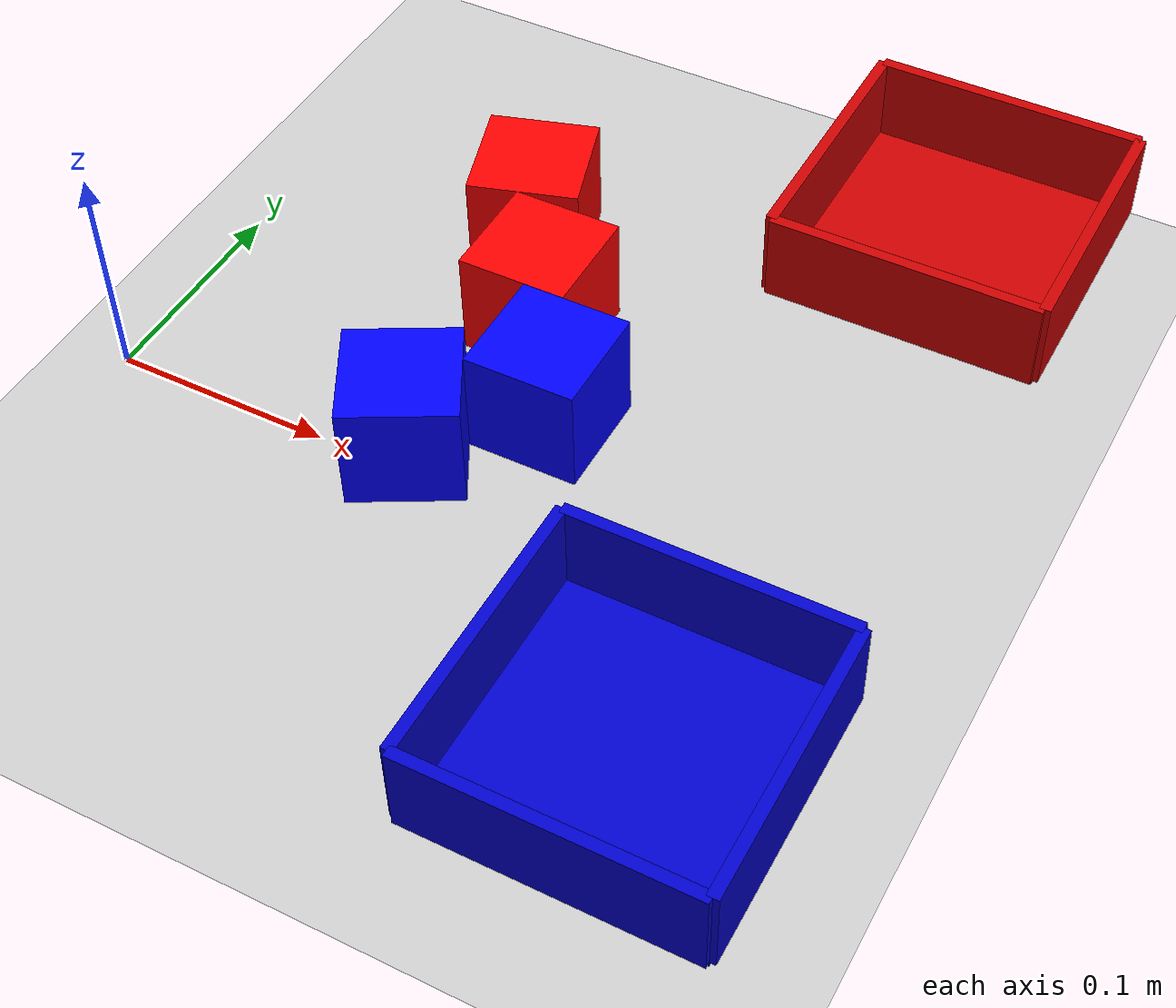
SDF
<sdf version='1.10'>
  <world name='braccio_sorting_world'>
    <plugin name='gz::sim::systems::Physics' filename='gz-sim-physics-system'>
      <engine>
        <filename>libgz-physics-bullet-featherstone-plugin.so</filename>
      </engine>
    </plugin>
    <plugin name='gz::sim::systems::UserCommands' filename='gz-sim-user-commands-system'/>
    <plugin name='gz::sim::systems::SceneBroadcaster' filename='gz-sim-scene-broadcaster-system'/>
    <plugin name='gz::sim::systems::Sensors' filename='gz-sim-sensors-system'>
      <render_engine>ogre2</render_engine>
    </plugin>
    <plugin name='gz::sim::systems::Imu' filename='gz-sim-imu-system'/>
    <gravity>0 0 -9.8000000000000007</gravity>
    <magnetic_field>5.5644999999999998e-06 2.2875799999999999e-05 -4.2388400000000002e-05</magnetic_field>
    <atmosphere type='adiabatic'/>
    <physics type='ode'>
      <max_step_size>0.001</max_step_size>
      <real_time_factor>1</real_time_factor>
      <real_time_update_rate>1000</real_time_update_rate>
    </physics>
    <scene>
      <ambient>0.400000006 0.400000006 0.400000006 1</ambient>
      <background>0.699999988 0.699999988 0.699999988 1</background>
      <shadows>true</shadows>
    </scene>
    <model name='ground_plane'>
      <static>true</static>
      <link name='link'>
        <collision name='collision'>
          <geometry>
            <plane>
              <normal>0 0 1</normal>
              <size>1 1</size>
            </plane>
          </geometry>
        </collision>
        <visual name='visual'>
          <geometry>
            <plane>
              <normal>0 0 1</normal>
              <size>100 100</size>
            </plane>
          </geometry>
          <material>
            <ambient>0.800000012 0.800000012 0.800000012 1</ambient>
            <diffuse>0.800000012 0.800000012 0.800000012 1</diffuse>
          </material>
        </visual>
        <pose>0 0 0 0 0 0</pose>
        <inertial>
          <pose>0 0 0 0 0 0</pose>
          <mass>1</mass>
          <inertia>
            <ixx>1</ixx>
            <ixy>0</ixy>
            <ixz>0</ixz>
            <iyy>1</iyy>
            <iyz>0</iyz>
            <izz>1</izz>
          </inertia>
        </inertial>
        <enable_wind>false</enable_wind>
      </link>
      <pose>0 0 0 0 0 0</pose>
      <self_collide>false</self_collide>
    </model>
    <model name='red_cube_1'>
      <pose>0.15082827210426331 0.10085789859294891 0.024999955669045448 4.6007782422695069e-07 9.2592376271935481e-07 0.0034777251785947836</pose>
      <link name='link'>
        <inertial>
          <mass>0.050000000000000003</mass>
          <inertia>
            <ixx>1.0000000000000001e-05</ixx>
            <iyy>1.0000000000000001e-05</iyy>
            <izz>1.0000000000000001e-05</izz>
            <ixy>0</ixy>
            <ixz>0</ixz>
            <iyz>0</iyz>
          </inertia>
          <pose>0 0 0 0 0 0</pose>
        </inertial>
        <collision name='collision'>
          <geometry>
            <box>
              <size>0.050000000000000003 0.050000000000000003 0.050000000000000003</size>
            </box>
          </geometry>
        </collision>
        <visual name='visual'>
          <geometry>
            <box>
              <size>0.050000000000000003 0.050000000000000003 0.050000000000000003</size>
            </box>
          </geometry>
          <material>
            <ambient>1 0 0 1</ambient>
            <diffuse>1 0 0 1</diffuse>
            <specular>0.5 0.5 0.5 1</specular>
          </material>
        </visual>
        <pose>0 0 0 0 0 0</pose>
        <enable_wind>false</enable_wind>
      </link>
      <static>false</static>
      <self_collide>false</self_collide>
    </model>
    <model name='red_cube_2'>
      <pose>0.12012927234172821 0.15020669996738434 0.024999955669045448 1.2813610753292987e-09 -4.8123102857885983e-07 0.30040729400139626</pose>
      <link name='link'>
        <inertial>
          <mass>0.050000000000000003</mass>
          <inertia>
            <ixx>1.0000000000000001e-05</ixx>
            <iyy>1.0000000000000001e-05</iyy>
            <izz>1.0000000000000001e-05</izz>
            <ixy>0</ixy>
            <ixz>0</ixz>
            <iyz>0</iyz>
          </inertia>
          <pose>0 0 0 0 0 0</pose>
        </inertial>
        <collision name='collision'>
          <geometry>
            <box>
              <size>0.050000000000000003 0.050000000000000003 0.050000000000000003</size>
            </box>
          </geometry>
        </collision>
        <visual name='visual'>
          <geometry>
            <box>
              <size>0.050000000000000003 0.050000000000000003 0.050000000000000003</size>
            </box>
          </geometry>
          <material>
            <ambient>1 0 0 1</ambient>
            <diffuse>1 0 0 1</diffuse>
            <specular>0.5 0.5 0.5 1</specular>
          </material>
        </visual>
        <pose>0 0 0 0 0 0</pose>
        <enable_wind>false</enable_wind>
      </link>
      <static>false</static>
      <self_collide>false</self_collide>
    </model>
    <model name='blue_cube_1'>
      <pose>0.18250249326229095 0.050861377269029617 0.024999946355819702 1.5012743538647867e-06 7.1308845528321123e-07 0.004416296230797285</pose>
      <link name='link'>
        <inertial>
          <mass>0.050000000000000003</mass>
          <inertia>
            <ixx>1.0000000000000001e-05</ixx>
            <iyy>1.0000000000000001e-05</iyy>
            <izz>1.0000000000000001e-05</izz>
            <ixy>0</ixy>
            <ixz>0</ixz>
            <iyz>0</iyz>
          </inertia>
          <pose>0 0 0 0 0 0</pose>
        </inertial>
        <collision name='collision'>
          <geometry>
            <box>
              <size>0.050000000000000003 0.050000000000000003 0.050000000000000003</size>
            </box>
          </geometry>
        </collision>
        <visual name='visual'>
          <geometry>
            <box>
              <size>0.050000000000000003 0.050000000000000003 0.050000000000000003</size>
            </box>
          </geometry>
          <material>
            <ambient>0 0 1 1</ambient>
            <diffuse>0 0 1 1</diffuse>
            <specular>0.5 0.5 0.5 1</specular>
          </material>
        </visual>
        <pose>0 0 0 0 0 0</pose>
        <enable_wind>false</enable_wind>
      </link>
      <static>false</static>
      <self_collide>false</self_collide>
    </model>
    <model name='blue_cube_2'>
      <pose>0.13883103430271149 0.0079887248575687408 0.024999953806400299 2.2584994569246862e-08 -1.2081673717709781e-06 0.50058271048593184</pose>
      <link name='link'>
        <inertial>
          <mass>0.050000000000000003</mass>
          <inertia>
            <ixx>1.0000000000000001e-05</ixx>
            <iyy>1.0000000000000001e-05</iyy>
            <izz>1.0000000000000001e-05</izz>
            <ixy>0</ixy>
            <ixz>0</ixz>
            <iyz>0</iyz>
          </inertia>
          <pose>0 0 0 0 0 0</pose>
        </inertial>
        <collision name='collision'>
          <geometry>
            <box>
              <size>0.050000000000000003 0.050000000000000003 0.050000000000000003</size>
            </box>
          </geometry>
        </collision>
        <visual name='visual'>
          <geometry>
            <box>
              <size>0.050000000000000003 0.050000000000000003 0.050000000000000003</size>
            </box>
          </geometry>
          <material>
            <ambient>0 0 1 1</ambient>
            <diffuse>0 0 1 1</diffuse>
            <specular>0.5 0.5 0.5 1</specular>
          </material>
        </visual>
        <pose>0 0 0 0 0 0</pose>
        <enable_wind>false</enable_wind>
      </link>
      <static>false</static>
      <self_collide>false</self_collide>
    </model>
    <model name='red_container'>
      <pose>0.30000001192092896 0.20000000298023224 0.029999999329447746 0 0 0</pose>
      <static>true</static>
      <link name='link'>
        <visual name='base'>
          <pose>0 0 0 0 0 0</pose>
          <geometry>
            <box>
              <size>0.12 0.12 0.0050000000000000001</size>
            </box>
          </geometry>
          <material>
            <ambient>0.800000012 0 0 1</ambient>
            <diffuse>0.800000012 0 0 1</diffuse>
          </material>
        </visual>
        <visual name='wall_front'>
          <pose>0.059999999999999998 0 0.02 0 0 0</pose>
          <geometry>
            <box>
              <size>0.0050000000000000001 0.12 0.040000000000000001</size>
            </box>
          </geometry>
          <material>
            <ambient>0.800000012 0 0 1</ambient>
            <diffuse>0.800000012 0 0 1</diffuse>
          </material>
        </visual>
        <visual name='wall_back'>
          <pose>-0.059999999999999998 0 0.02 0 0 0</pose>
          <geometry>
            <box>
              <size>0.0050000000000000001 0.12 0.040000000000000001</size>
            </box>
          </geometry>
          <material>
            <ambient>0.800000012 0 0 1</ambient>
            <diffuse>0.800000012 0 0 1</diffuse>
          </material>
        </visual>
        <visual name='wall_left'>
          <pose>0 0.059999999999999998 0.02 0 0 0</pose>
          <geometry>
            <box>
              <size>0.12 0.0050000000000000001 0.040000000000000001</size>
            </box>
          </geometry>
          <material>
            <ambient>0.800000012 0 0 1</ambient>
            <diffuse>0.800000012 0 0 1</diffuse>
          </material>
        </visual>
        <visual name='wall_right'>
          <pose>0 -0.059999999999999998 0.02 0 0 0</pose>
          <geometry>
            <box>
              <size>0.12 0.0050000000000000001 0.040000000000000001</size>
            </box>
          </geometry>
          <material>
            <ambient>0.800000012 0 0 1</ambient>
            <diffuse>0.800000012 0 0 1</diffuse>
          </material>
        </visual>
        <collision name='base_collision'>
          <geometry>
            <box>
              <size>0.12 0.12 0.0050000000000000001</size>
            </box>
          </geometry>
        </collision>
        <pose>0 0 0 0 0 0</pose>
        <inertial>
          <pose>0 0 0 0 0 0</pose>
          <mass>1</mass>
          <inertia>
            <ixx>1</ixx>
            <ixy>0</ixy>
            <ixz>0</ixz>
            <iyy>1</iyy>
            <iyz>0</iyz>
            <izz>1</izz>
          </inertia>
        </inertial>
        <enable_wind>false</enable_wind>
      </link>
      <self_collide>false</self_collide>
    </model>
    <model name='blue_container'>
      <pose>0.30000001192092896 -0.10000000149011612 0.029999999329447746 0 0 0</pose>
      <static>true</static>
      <link name='link'>
        <visual name='base'>
          <pose>0 0 0 0 0 0</pose>
          <geometry>
            <box>
              <size>0.12 0.12 0.0050000000000000001</size>
            </box>
          </geometry>
          <material>
            <ambient>0 0 0.800000012 1</ambient>
            <diffuse>0 0 0.800000012 1</diffuse>
          </material>
        </visual>
        <visual name='wall_front'>
          <pose>0.059999999999999998 0 0.02 0 0 0</pose>
          <geometry>
            <box>
              <size>0.0050000000000000001 0.12 0.040000000000000001</size>
            </box>
          </geometry>
          <material>
            <ambient>0 0 0.800000012 1</ambient>
            <diffuse>0 0 0.800000012 1</diffuse>
          </material>
        </visual>
        <visual name='wall_back'>
          <pose>-0.059999999999999998 0 0.02 0 0 0</pose>
          <geometry>
            <box>
              <size>0.0050000000000000001 0.12 0.040000000000000001</size>
            </box>
          </geometry>
          <material>
            <ambient>0 0 0.800000012 1</ambient>
            <diffuse>0 0 0.800000012 1</diffuse>
          </material>
        </visual>
        <visual name='wall_left'>
          <pose>0 0.059999999999999998 0.02 0 0 0</pose>
          <geometry>
            <box>
              <size>0.12 0.0050000000000000001 0.040000000000000001</size>
            </box>
          </geometry>
          <material>
            <ambient>0 0 0.800000012 1</ambient>
            <diffuse>0 0 0.800000012 1</diffuse>
          </material>
        </visual>
        <visual name='wall_right'>
          <pose>0 -0.059999999999999998 0.02 0 0 0</pose>
          <geometry>
            <box>
              <size>0.12 0.0050000000000000001 0.040000000000000001</size>
            </box>
          </geometry>
          <material>
            <ambient>0 0 0.800000012 1</ambient>
            <diffuse>0 0 0.800000012 1</diffuse>
          </material>
        </visual>
        <collision name='base_collision'>
          <geometry>
            <box>
              <size>0.12 0.12 0.0050000000000000001</size>
            </box>
          </geometry>
        </collision>
        <pose>0 0 0 0 0 0</pose>
        <inertial>
          <pose>0 0 0 0 0 0</pose>
          <mass>1</mass>
          <inertia>
            <ixx>1</ixx>
            <ixy>0</ixy>
            <ixz>0</ixz>
            <iyy>1</iyy>
            <iyz>0</iyz>
            <izz>1</izz>
          </inertia>
        </inertial>
        <enable_wind>false</enable_wind>
      </link>
      <self_collide>false</self_collide>
    </model>
    <light name='directionallight' type='directional'>
      <pose>0.73563525713353961 0.4356210910875622 2 0 0 0</pose>
      <cast_shadows>true</cast_shadows>
      <intensity>1</intensity>
      <direction>0 0 -1</direction>
      <diffuse>0.800000012 0.800000012 0.800000012 1</diffuse>
      <specular>0.200000003 0.200000003 0.200000003 1</specular>
      <attenuation>
        <range>1000</range>
        <linear>0.01</linear>
        <constant>0.90000000000000002</constant>
        <quadratic>0.001</quadratic>
      </attenuation>
      <spot>
        <inner_angle>0</inner_angle>
        <outer_angle>0</outer_angle>
        <falloff>0</falloff>
      </spot>
    </light>
  </world>
</sdf>
